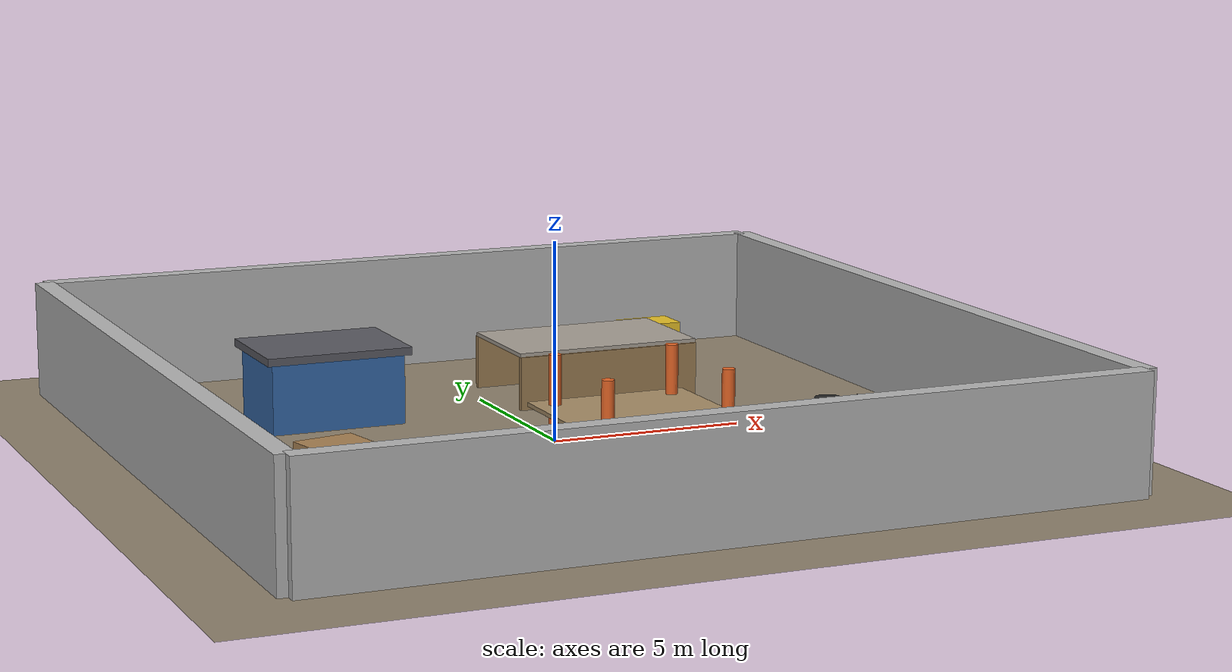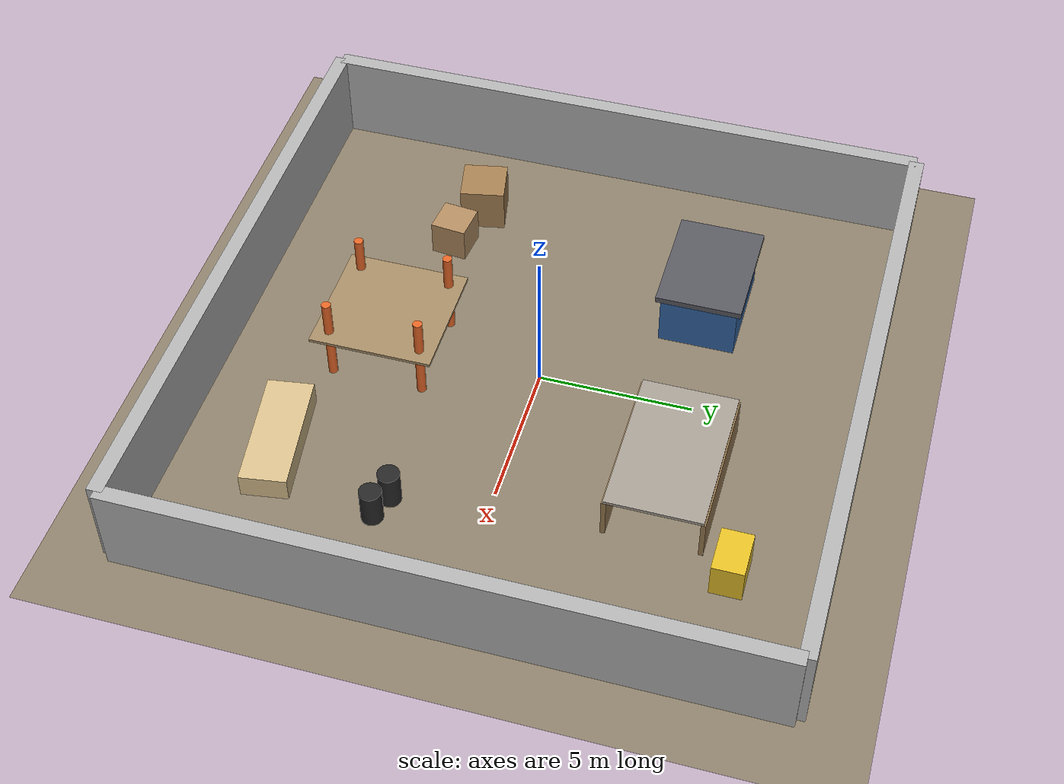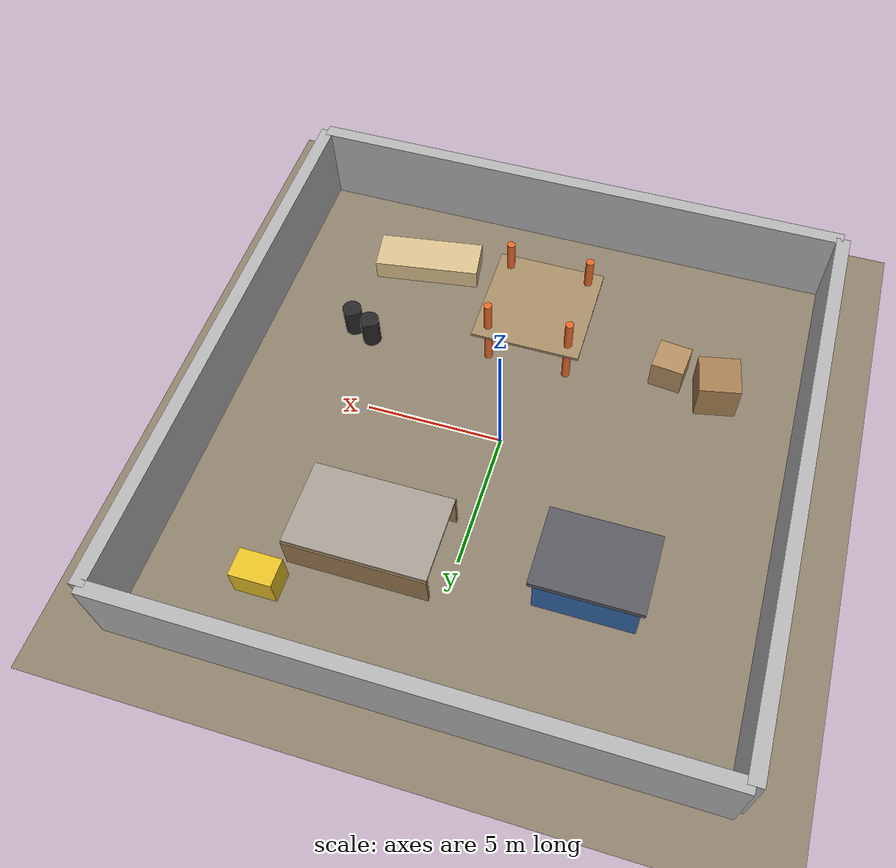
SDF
<sdf version='1.7'>
  <world name='construction_site_big_v'>

    <!-- Lighting -->
    <light name='sun' type='directional'>
      <cast_shadows>1</cast_shadows>
      <pose>0 0 15 0 -0 0</pose>
      <diffuse>0.9 0.85 0.8 1</diffuse>
      <specular>0.3 0.3 0.3 1</specular>
      <attenuation>
        <range>1000</range>
        <constant>0.9</constant>
        <linear>0.01</linear>
        <quadratic>0.001</quadratic>
      </attenuation>
      <direction>-0.5 0.1 -0.9</direction>
    </light>

    <light name='ambient' type='point'>
      <pose>0 0 12 0 0 0</pose>
      <diffuse>0.4 0.4 0.45 1</diffuse>
      <specular>0.1 0.1 0.1 1</specular>
      <attenuation>
        <range>100</range>
        <constant>0.5</constant>
        <linear>0.01</linear>
        <quadratic>0.001</quadratic>
      </attenuation>
    </light>

    <!-- Ground Plane -->
    <model name='ground_plane'>
      <static>1</static>
      <link name='link'>
        <collision name='collision'>
          <geometry>
            <plane>
              <normal>0 0 1</normal>
              <size>35 35</size>
            </plane>
          </geometry>
          <surface>
            <friction>
              <ode>
                <mu>100</mu>
                <mu2>50</mu2>
              </ode>
            </friction>
          </surface>
        </collision>
        <visual name='visual'>
          <cast_shadows>0</cast_shadows>
          <geometry>
            <plane>
              <normal>0 0 1</normal>
              <size>35 35</size>
            </plane>
          </geometry>
          <material>
            <ambient>0.45 0.4 0.35 1</ambient>
            <diffuse>0.55 0.5 0.42 1</diffuse>
            <specular>0.1 0.1 0.1 1</specular>
          </material>
        </visual>
      </link>
    </model>

    <!-- Physics -->
    <physics type='ode'>
      <max_step_size>0.001</max_step_size>
      <real_time_factor>1</real_time_factor>
      <real_time_update_rate>1000</real_time_update_rate>
    </physics>

    <!-- Construction Site -->
    <model name='construction_site'>
      <pose>0 0 0 0 0 0</pose>
      <static>1</static>

        <!-- ============ BOUNDARY WALLS ============ -->
      <link name='North_Wall'>
        <pose>0 10.25 1.5 0 0 0</pose>
        <collision name='col'><geometry><box><size>20.5 0.5 3</size></box></geometry></collision>
        <visual name='vis'><geometry><box><size>20.5 0.5 3</size></box></geometry>
        <material>
          <ambient>0.6 0.6 0.6 1</ambient>
          <diffuse>0.7 0.7 0.7 1</diffuse>
          <specular>0.3 0.3 0.3 1</specular>
        </material></visual>
      </link>
      <link name='South_Wall'>
        <pose>0 -10.25 1.5 0 0 0</pose>
        <collision name='col'><geometry><box><size>20.5 0.5 3</size></box></geometry></collision>
        <visual name='vis'><geometry><box><size>20.5 0.5 3</size></box></geometry>
        <material>
          <ambient>0.6 0.6 0.6 1</ambient>
          <diffuse>0.7 0.7 0.7 1</diffuse>
          <specular>0.3 0.3 0.3 1</specular>
        </material></visual>
      </link>
      <link name='East_Wall'>
        <pose>10.25 0 1.5 0 0 0</pose>
        <collision name='col'><geometry><box><size>0.5 20.5 3</size></box></geometry></collision>
        <visual name='vis'><geometry><box><size>0.5 20.5 3</size></box></geometry>
        <material>
          <ambient>0.6 0.6 0.6 1</ambient>
          <diffuse>0.7 0.7 0.7 1</diffuse>
          <specular>0.3 0.3 0.3 1</specular>
        </material></visual>
      </link>
      <link name='West_Wall'>
        <pose>-10.25 0 1.5 0 0 0</pose>
        <collision name='col'><geometry><box><size>0.5 20.5 3</size></box></geometry></collision>
        <visual name='vis'><geometry><box><size>0.5 20.5 3</size></box></geometry>
        <material>
          <ambient>0.6 0.6 0.6 1</ambient>
          <diffuse>0.7 0.7 0.7 1</diffuse>
          <specular>0.3 0.3 0.3 1</specular>
        </material></visual>
      </link>

      <!-- ============ NORTHWEST ============ -->

      <!-- Scaffolding -->
      <link name='Scaffold_Post_1'>
        <pose>-1.5 -3.5 1.5 0 0 0</pose>
        <collision name='col'><geometry><cylinder><radius>0.15</radius><length>3</length></cylinder></geometry></collision>
        <visual name='vis'><geometry><cylinder><radius>0.15</radius><length>3</length></cylinder></geometry>
        <material>
          <ambient>0.8 0.35 0.1 1</ambient>
          <diffuse>0.9 0.4 0.15 1</diffuse>
          <specular>0.4 0.4 0.4 1</specular>
        </material></visual>
      </link>
      <link name='Scaffold_Post_2'>
        <pose>-1.5 -6.5 1.5 0 0 0</pose>
        <collision name='col'><geometry><cylinder><radius>0.15</radius><length>3</length></cylinder></geometry></collision>
        <visual name='vis'><geometry><cylinder><radius>0.15</radius><length>3</length></cylinder></geometry>
        <material>
          <ambient>0.8 0.35 0.1 1</ambient>
          <diffuse>0.9 0.4 0.15 1</diffuse>
          <specular>0.4 0.4 0.4 1</specular>
        </material></visual>
      </link>
      <link name='Scaffold_Post_3'>
        <pose>1.5 -3.5 1.5 0 0 0</pose>
        <collision name='col'><geometry><cylinder><radius>0.15</radius><length>3</length></cylinder></geometry></collision>
        <visual name='vis'><geometry><cylinder><radius>0.15</radius><length>3</length></cylinder></geometry>
        <material>
          <ambient>0.8 0.35 0.1 1</ambient>
          <diffuse>0.9 0.4 0.15 1</diffuse>
          <specular>0.4 0.4 0.4 1</specular>
        </material></visual>
      </link>
      <link name='Scaffold_Post_4'>
        <pose>1.5 -6.5 1.5 0 0 0</pose>
        <collision name='col'><geometry><cylinder><radius>0.15</radius><length>3</length></cylinder></geometry></collision>
        <visual name='vis'><geometry><cylinder><radius>0.15</radius><length>3</length></cylinder></geometry>
        <material>
          <ambient>0.8 0.35 0.1 1</ambient>
          <diffuse>0.9 0.4 0.15 1</diffuse>
          <specular>0.4 0.4 0.4 1</specular>
        </material></visual>
      </link>
      <link name='Scaffold_Platform1'>
        <pose>0 -5 1.75 0 0 0</pose>
        <collision name='col'><geometry><box><size>4 4 0.1</size></box></geometry></collision>
        <visual name='vis'><geometry><box><size>4 4 0.1</size></box></geometry>
        <material>
          <ambient>0.55 0.45 0.3 1</ambient>
          <diffuse>0.65 0.55 0.4 1</diffuse>
          <specular>0.1 0.1 0.1 1</specular>
        </material></visual>
      </link>

      <!-- ============ NORTHEAST ============ -->

      <!-- Tool Shed -->
      <link name='Tool_Shed'>
        <pose>-4.5 4.5 0.9 0 0 0</pose>
        <collision name='col'><geometry><box><size>3.5 2.5 1.8</size></box></geometry></collision>
        <visual name='vis'><geometry><box><size>3.5 2.5 1.8</size></box></geometry>
        <material>
          <ambient>0.15 0.3 0.5 1</ambient>
          <diffuse>0.2 0.4 0.65 1</diffuse>
          <specular>0.4 0.4 0.4 1</specular>
        </material></visual>
      </link>
      <link name='Tool_Shed_Roof'>
        <pose>-4.5 4.5 1.9 0 0 0</pose>
        <collision name='col'><geometry><box><size>3.8 2.8 0.2</size></box></geometry></collision>
        <visual name='vis'><geometry><box><size>3.8 2.8 0.2</size></box></geometry>
        <material>
          <ambient>0.25 0.25 0.28 1</ambient>
          <diffuse>0.35 0.35 0.38 1</diffuse>
          <specular>0.3 0.3 0.3 1</specular>
        </material></visual>
      </link>

      <!-- Concrete Barrier -->

      <!-- ============ SOUTHWEST ============ -->

      <!-- Sand Pile -->

      <!-- Wooden Crates -->
      <link name='Crate_1'>
        <pose>-7 -4 0.75 0 0 0.2</pose>
        <collision name='col'><geometry><box><size>1.5 1.5 1.5</size></box></geometry></collision>
        <visual name='vis'><geometry><box><size>1.5 1.5 1.5</size></box></geometry>
        <material>
          <ambient>0.5 0.38 0.22 1</ambient>
          <diffuse>0.65 0.5 0.32 1</diffuse>
          <specular>0.1 0.08 0.05 1</specular>
        </material></visual>
      </link>
      <link name='Crate_2'>
        <pose>-5.2 -4.5 0.6 0 0 -0.1</pose>
        <collision name='col'><geometry><box><size>1.2 1.2 1.2</size></box></geometry></collision>
        <visual name='vis'><geometry><box><size>1.2 1.2 1.2</size></box></geometry>
        <material>
          <ambient>0.55 0.42 0.25 1</ambient>
          <diffuse>0.7 0.55 0.38 1</diffuse>
          <specular>0.1 0.08 0.05 1</specular>
        </material></visual>
      </link>

      <!-- ============ SOUTHEAST ============ -->

      <!-- Cement Mixer -->
      <link name='Cement_Mixer_Base'>
        <pose>6 7.5 0.6 0 0 0</pose>
        <collision name='col'><geometry><box><size>1.5 1 1.2</size></box></geometry></collision>
        <visual name='vis'><geometry><box><size>1.5 1 1.2</size></box></geometry>
        <material>
          <ambient>0.7 0.55 0.1 1</ambient>
          <diffuse>0.9 0.75 0.15 1</diffuse>
          <specular>0.3 0.3 0.2 1</specular>
        </material></visual>
      </link>

      <!-- Oil Drums -->
      <link name='Oil_Drum_1'>
        <pose>6 -3 0.6 0 0 0</pose>
        <collision name='col'><geometry><cylinder><radius>0.35</radius><length>1.2</length></cylinder></geometry></collision>
        <visual name='vis'><geometry><cylinder><radius>0.35</radius><length>1.2</length></cylinder></geometry>
        <material>
          <ambient>0.1 0.1 0.1 1</ambient>
          <diffuse>0.15 0.15 0.15 1</diffuse>
          <specular>0.4 0.4 0.4 1</specular>
        </material></visual>
      </link>
      <link name='Oil_Drum_2'>
        <pose>6.8 -3.3 0.6 0 0 0</pose>
        <collision name='col'><geometry><cylinder><radius>0.35</radius><length>1.2</length></cylinder></geometry></collision>
        <visual name='vis'><geometry><cylinder><radius>0.35</radius><length>1.2</length></cylinder></geometry>
        <material>
          <ambient>0.1 0.1 0.1 1</ambient>
          <diffuse>0.15 0.15 0.15 1</diffuse>
          <specular>0.4 0.4 0.4 1</specular>
        </material></visual>
      </link>

      <!-- ============ SCATTERED ITEMS ============ -->

      <!-- Traffic Cones -->

      <!-- Lumber Stack -->
      <link name='Lumber_Stack'>
        <pose>5 -7 0.4 0 0 0.15</pose>
        <collision name='col'><geometry><box><size>4 1.5 0.8</size></box></geometry></collision>
        <visual name='vis'><geometry><box><size>4 1.5 0.8</size></box></geometry>
        <material>
          <ambient>0.7 0.6 0.4 1</ambient>
          <diffuse>0.85 0.75 0.55 1</diffuse>
          <specular>0.1 0.1 0.08 1</specular>
        </material></visual>
      </link>

      <!-- Dumpster -->

      <!-- Generator -->

      <!-- Concrete Pipes -->

    </model>

    <!-- Covered Walkway / Tunnel -->
    <model name='covered_walkway'>
      <pose>3 5 0 0 0 0</pose>
      <static>1</static>

      <link name='walkway_left'>
        <pose>0 1.5 0.7 0 0 0</pose>
        <collision name='c'><geometry><box><size>5 0.15 1.4</size></box></geometry></collision>
        <visual name='v'><geometry><box><size>5 0.15 1.4</size></box></geometry>
        <material>
          <ambient>0.45 0.35 0.22 1</ambient>
          <diffuse>0.6 0.48 0.32 1</diffuse>
          <specular>0.1 0.08 0.05 1</specular>
        </material></visual>
      </link>
      <link name='walkway_right'>
        <pose>0 -1.5 0.7 0 0 0</pose>
        <collision name='c'><geometry><box><size>5 0.15 1.4</size></box></geometry></collision>
        <visual name='v'><geometry><box><size>5 0.15 1.4</size></box></geometry>
        <material>
          <ambient>0.45 0.35 0.22 1</ambient>
          <diffuse>0.6 0.48 0.32 1</diffuse>
          <specular>0.1 0.08 0.05 1</specular>
        </material></visual>
      </link>
      <link name='walkway_roof'>
        <pose>0 0 1.45 0 0 0</pose>
        <collision name='c'><geometry><box><size>5 3.05 0.1</size></box></geometry></collision>
        <visual name='v'><geometry><box><size>5 3.05 0.1</size></box></geometry>
        <material>
          <ambient>0.5 0.48 0.45 1</ambient>
          <diffuse>0.65 0.62 0.58 1</diffuse>
          <specular>0.35 0.35 0.35 1</specular>
        </material></visual>
      </link>
    </model>

  </world>
</sdf>
